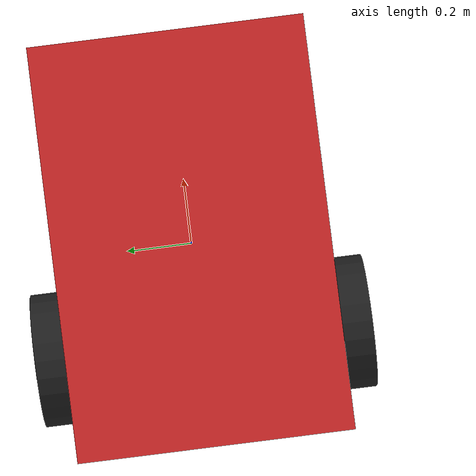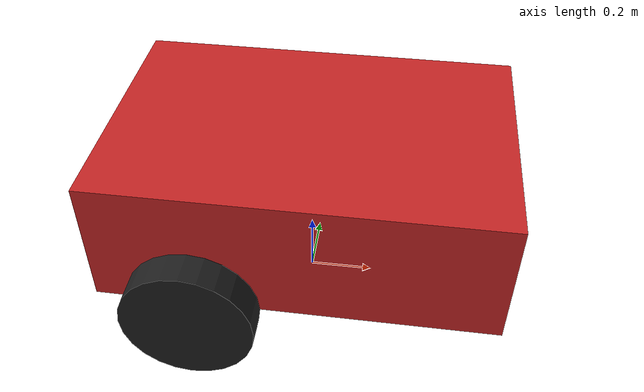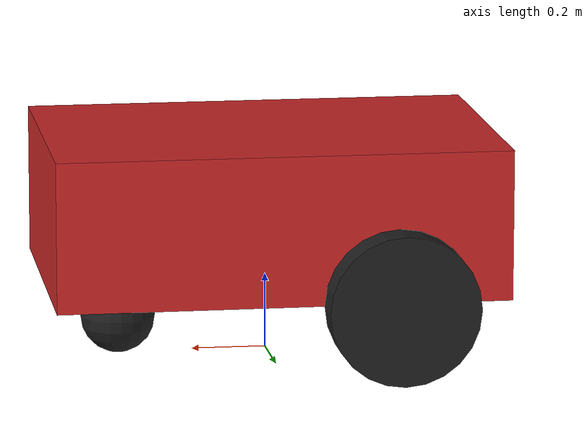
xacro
<?xml version="1.0"?>
<robot xmlns:xacro="http://www.ros.org/wiki/xacro">

    <xacro:property name="base_length" value="1.2"/>
    <xacro:property name="base_width" value="0.8"/>
    <xacro:property name="base_height" value="0.4"/>
    <xacro:property name="wheel_radius" value="0.2"/>
    <xacro:property name="wheel_length" value="0.1"/>

  <link name="base_link">
    <visual>
      <geometry>
        <box size="${base_length} ${base_width} ${base_height}"/>
      </geometry>
      <origin xyz="0 0 ${base_height/2.0}" rpy="0 0 0"/>
      <material name="base_cherry_red"/>
    </visual>

    <collision>
      <geometry>
        <box size="${base_length} ${base_width} ${base_height}"/>
      </geometry>
      <origin xyz="0 0 ${base_height/2.0}" rpy="0 0 0"/>
    </collision>

    <xacro:box_inertia m="10" x="${base_length}" y="${base_width}" z="${base_height}" o_xyz="0 0 ${base_height/2.0}" o_rpy="0 0 0"/>
    <!-- mass is in KG, so put realistic values though its Simulation. Here its 10Kg -->
  </link>

  <!-- Creating macros for 2 wheels, but before creating a macro think once it makes sense or not to make a macro for it ! Dont Overoptimize and dont create unnecessary complexity ! -->
  <xacro:macro name="wheel_link" params="prefix">
    <link name="${prefix}_wheel_link">
      <visual>
            <geometry>
                <cylinder radius="${wheel_radius}" length="${wheel_length}"/>
            </geometry>
            <origin xyz="0 0 0" rpy="${pi/2} 0 0"/>
            <material name="wheel_black"/>
      </visual>

      <collision>
            <geometry>
            <!-- We are not choosing Cylinder for collision as it needs Gazebo to track multiple points of contact which may not make the robot work the intended way. So choosing S-->
                <sphere radius="${wheel_radius}"/>
                <origin xyz="0 0 0" rpy="0 0 0"/>
            </geometry>
            <origin xyz="0 0 0" rpy="0 0 0"/>
      </collision>

      <xacro:cylinder_inertia m="2.0" r="${wheel_radius}" l="${wheel_length}" o_xyz="0 0 0" o_rpy="${pi/2} 0 0"/>
    </link>
  </xacro:macro>

  <xacro:wheel_link prefix="right"/>
  <xacro:wheel_link prefix="left"/>

  <link name="caster_wheel_link">
    <visual>
      <geometry>
        <sphere radius="${wheel_radius/2.0}"/>
      </geometry>
      <origin xyz="0 0 0" rpy="0 0 0"/>
      <material name="wheel_black"/>
    </visual>

    <collision>
      <geometry>
        <sphere radius="${wheel_radius/2.0}"/>
      </geometry>
      <origin xyz="0 0 0" rpy="0 0 0"/>
    </collision>

    <xacro:sphere_inertia m="1.0" r="${wheel_radius/2.0}" o_xyz="0 0 0" o_rpy="0 0 0"/>
  </link>

  <link name="base_footprint_link">
    <!--No visual, or inertia-->
  </link>

<joint name="base_joint" type="fixed">
  <parent link="base_footprint_link"/>
  <child link="base_link"/>
  <origin xyz="0 0 ${wheel_radius}" rpy="0 0 0"/>
</joint>

  <joint name="base_right_wheel_joint" type="continuous">
    <parent link="base_link"/>
    <child link="right_wheel_link"/>
    <origin xyz="-${base_length/4.0} -${base_width/2.0 + wheel_length/2.0} 0" rpy="0 0 0"/>
    <axis xyz="0 1 0"/>
  </joint>

  <joint name="base_left_wheel_joint" type="continuous">
    <parent link="base_link"/>
    <child link="left_wheel_link"/>
    <origin xyz="-${base_length/4.0} ${base_width/2.0 + wheel_length/2.0} 0" rpy="0 0 0"/>
    <axis xyz="0 1 0"/>
  </joint>

<joint name="base_caster_wheel_joint" type="fixed">
    <parent link="base_link"/>
    <child link="caster_wheel_link"/>
    <origin xyz="${base_length/3.0} 0 -${wheel_radius/2.0}" rpy="0 0 0"/>
  </joint>

</robot>
